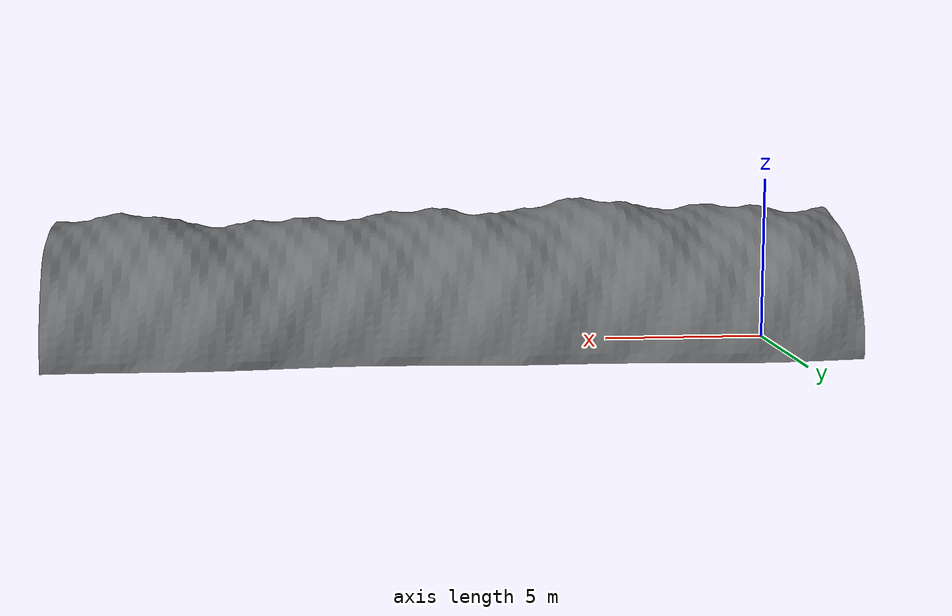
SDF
<?xml version="1.0"?>
<sdf version="1.6">
  <model name="goaf_rock_24x8x4">
    <static>true</static>
    <link name="rock_shell">
      <collision name="collision">
        <geometry>
          <mesh><uri>model://goaf_rock_24x8x4/meshes/goaf_rock_inner.obj</uri></mesh>
        </geometry>
        <surface>
          <friction><ode><mu>1.15</mu><mu2>1.15</mu2></ode></friction>
          <contact><ode><kp>1000000</kp><kd>100</kd></ode></contact>
        </surface>
      </collision>
      <visual name="visual">
        <!-- Visual and collision deliberately reference the identical mesh so
             MID360 rays, rendered rock and physical contact agree. -->
        <geometry>
          <mesh><uri>model://goaf_rock_24x8x4/meshes/goaf_rock_inner.obj</uri></mesh>
        </geometry>
        <material>
          <ambient>0.27 0.28 0.29 1</ambient>
          <diffuse>0.44 0.45 0.46 1</diffuse>
          <specular>0.018 0.018 0.018 1</specular>
        </material>
      </visual>
    </link>
  </model>
</sdf>
